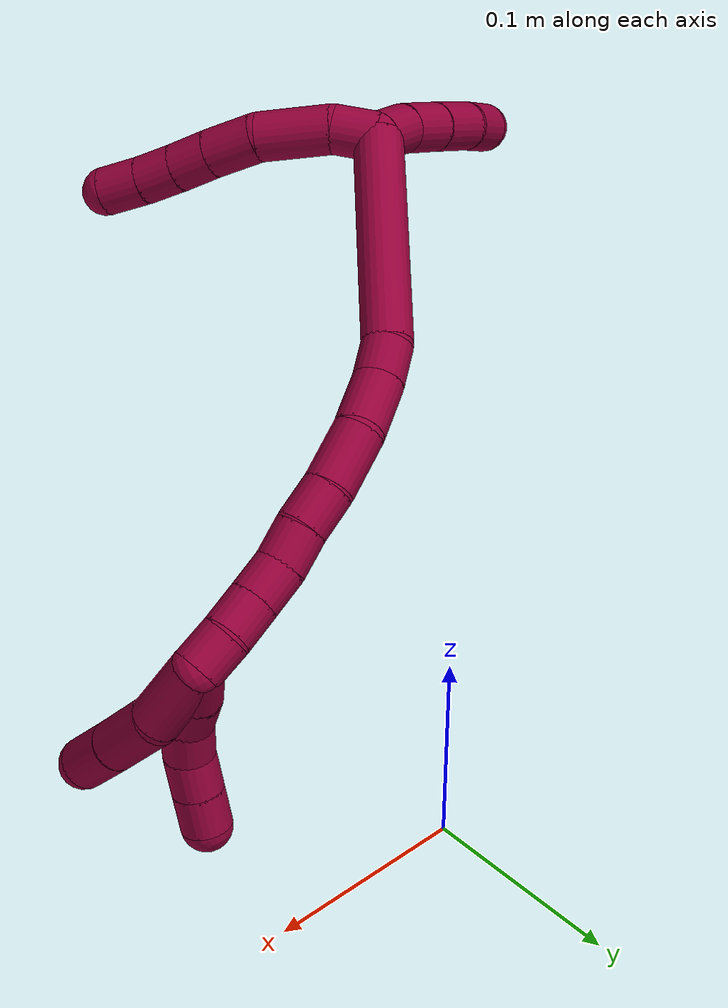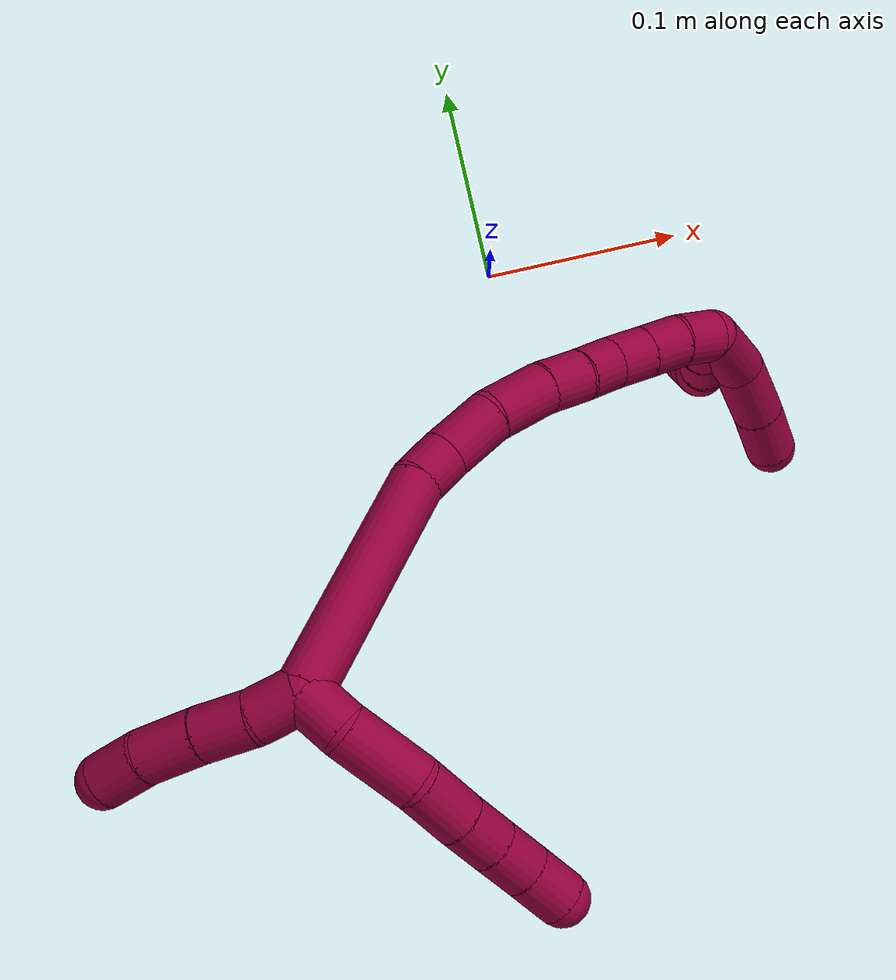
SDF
<sdf version="1.7">
 <world name="default">
  <model name="8">
   <static>0</static>
   <link name="8">
    <collision name="collision-cylinder-e_1_2_8">
     <pose>0.008519 0.000836 0.0074 -0.112443 0.852418 -0.051097</pose>
     <geometry><cylinder><radius>0.0125</radius><length>0.02263</length></cylinder></geometry>
     <surface>
      <friction><ode><mu>1.16</mu><mu2>1.16</mu2><slip1>0</slip1><slip2>0</slip2></ode></friction>
      <contact><ode><kp>1e+06</kp><kd>1</kd><max_vel>0</max_vel><min_depth>0.001</min_depth></ode></contact>
     </surface>
    </collision>
    <visual name="visual-cylinder-e_1_2_8">
     <pose>0.008519 0.000836 0.0074 -0.112443 0.852418 -0.051097</pose>
     <geometry><cylinder><radius>0.0125</radius><length>0.02263</length></cylinder></geometry>
     <material><ambient>0.584314 0 0.227451 1</ambient></material>
    </visual>
    <collision name="collision-cylinder-e_2_8_9">
     <pose>0.034049 0.001152 0.023183 0.061863 1.11221 0.038458</pose>
     <geometry><cylinder><radius>0.0125</radius><length>0.037943</length></cylinder></geometry>
     <surface>
      <friction><ode><mu>1.16</mu><mu2>1.16</mu2><slip1>0</slip1><slip2>0</slip2></ode></friction>
      <contact><ode><kp>1e+06</kp><kd>1</kd><max_vel>0</max_vel><min_depth>0.001</min_depth></ode></contact>
     </surface>
    </collision>
    <visual name="visual-cylinder-e_2_8_9">
     <pose>0.034049 0.001152 0.023183 0.061863 1.11221 0.038458</pose>
     <geometry><cylinder><radius>0.0125</radius><length>0.037943</length></cylinder></geometry>
     <material><ambient>0.584314 0 0.227451 1</ambient></material>
    </visual>
    <collision name="collision-cylinder-e_3_9_10">
     <pose>0.063424 -0.002751 0.035214 0.747637 1.18811 0.518003</pose>
     <geometry><cylinder><radius>0.0125</radius><length>0.026655</length></cylinder></geometry>
     <surface>
      <friction><ode><mu>1.16</mu><mu2>1.16</mu2><slip1>0</slip1><slip2>0</slip2></ode></friction>
      <contact><ode><kp>1e+06</kp><kd>1</kd><max_vel>0</max_vel><min_depth>0.001</min_depth></ode></contact>
     </surface>
    </collision>
    <visual name="visual-cylinder-e_3_9_10">
     <pose>0.063424 -0.002751 0.035214 0.747637 1.18811 0.518003</pose>
     <geometry><cylinder><radius>0.0125</radius><length>0.026655</length></cylinder></geometry>
     <material><ambient>0.584314 0 0.227451 1</ambient></material>
    </visual>
    <collision name="collision-cylinder-e_4_10_11">
     <pose>0.085426 -0.008714 0.041208 0.833196 1.22378 0.602152</pose>
     <geometry><cylinder><radius>0.0125</radius><length>0.020498</length></cylinder></geometry>
     <surface>
      <friction><ode><mu>1.16</mu><mu2>1.16</mu2><slip1>0</slip1><slip2>0</slip2></ode></friction>
      <contact><ode><kp>1e+06</kp><kd>1</kd><max_vel>0</max_vel><min_depth>0.001</min_depth></ode></contact>
     </surface>
    </collision>
    <visual name="visual-cylinder-e_4_10_11">
     <pose>0.085426 -0.008714 0.041208 0.833196 1.22378 0.602152</pose>
     <geometry><cylinder><radius>0.0125</radius><length>0.020498</length></cylinder></geometry>
     <material><ambient>0.584314 0 0.227451 1</ambient></material>
    </visual>
    <collision name="collision-cylinder-e_5_11_12">
     <pose>0.104603 -0.013545 0.046143 0.715418 1.2254 0.513892</pose>
     <geometry><cylinder><radius>0.0125</radius><length>0.020275</length></cylinder></geometry>
     <surface>
      <friction><ode><mu>1.16</mu><mu2>1.16</mu2><slip1>0</slip1><slip2>0</slip2></ode></friction>
      <contact><ode><kp>1e+06</kp><kd>1</kd><max_vel>0</max_vel><min_depth>0.001</min_depth></ode></contact>
     </surface>
    </collision>
    <visual name="visual-cylinder-e_5_11_12">
     <pose>0.104603 -0.013545 0.046143 0.715418 1.2254 0.513892</pose>
     <geometry><cylinder><radius>0.0125</radius><length>0.020275</length></cylinder></geometry>
     <material><ambient>0.584314 0 0.227451 1</ambient></material>
    </visual>
    <collision name="collision-cylinder-e_6_12_6">
     <pose>0.124383 -0.017894 0.052154 0.550184 1.19736 0.380442</pose>
     <geometry><cylinder><radius>0.0125</radius><length>0.021998</length></cylinder></geometry>
     <surface>
      <friction><ode><mu>1.16</mu><mu2>1.16</mu2><slip1>0</slip1><slip2>0</slip2></ode></friction>
      <contact><ode><kp>1e+06</kp><kd>1</kd><max_vel>0</max_vel><min_depth>0.001</min_depth></ode></contact>
     </surface>
    </collision>
    <visual name="visual-cylinder-e_6_12_6">
     <pose>0.124383 -0.017894 0.052154 0.550184 1.19736 0.380442</pose>
     <geometry><cylinder><radius>0.0125</radius><length>0.021998</length></cylinder></geometry>
     <material><ambient>0.584314 0 0.227451 1</ambient></material>
    </visual>
    <collision name="collision-cylinder-e_1_2_13">
     <pose>-0.005898 -0.009731 0.001197 1.44843 -0.541557 -0.481569</pose>
     <geometry><cylinder><radius>0.0125</radius><length>0.022883</length></cylinder></geometry>
     <surface>
      <friction><ode><mu>1.16</mu><mu2>1.16</mu2><slip1>0</slip1><slip2>0</slip2></ode></friction>
      <contact><ode><kp>1e+06</kp><kd>1</kd><max_vel>0</max_vel><min_depth>0.001</min_depth></ode></contact>
     </surface>
    </collision>
    <visual name="visual-cylinder-e_1_2_13">
     <pose>-0.005898 -0.009731 0.001197 1.44843 -0.541557 -0.481569</pose>
     <geometry><cylinder><radius>0.0125</radius><length>0.022883</length></cylinder></geometry>
     <material><ambient>0.584314 0 0.227451 1</ambient></material>
    </visual>
    <collision name="collision-cylinder-e_2_13_14">
     <pose>-0.018442 -0.03021 0.001355 1.66717 -0.551758 -0.604465</pose>
     <geometry><cylinder><radius>0.0125</radius><length>0.025359</length></cylinder></geometry>
     <surface>
      <friction><ode><mu>1.16</mu><mu2>1.16</mu2><slip1>0</slip1><slip2>0</slip2></ode></friction>
      <contact><ode><kp>1e+06</kp><kd>1</kd><max_vel>0</max_vel><min_depth>0.001</min_depth></ode></contact>
     </surface>
    </collision>
    <visual name="visual-cylinder-e_2_13_14">
     <pose>-0.018442 -0.03021 0.001355 1.66717 -0.551758 -0.604465</pose>
     <geometry><cylinder><radius>0.0125</radius><length>0.025359</length></cylinder></geometry>
     <material><ambient>0.584314 0 0.227451 1</ambient></material>
    </visual>
    <collision name="collision-cylinder-e_3_14_15">
     <pose>-0.031805 -0.053387 -0.000529 1.63865 -0.494467 -0.527668</pose>
     <geometry><cylinder><radius>0.0125</radius><length>0.028307</length></cylinder></geometry>
     <surface>
      <friction><ode><mu>1.16</mu><mu2>1.16</mu2><slip1>0</slip1><slip2>0</slip2></ode></friction>
      <contact><ode><kp>1e+06</kp><kd>1</kd><max_vel>0</max_vel><min_depth>0.001</min_depth></ode></contact>
     </surface>
    </collision>
    <visual name="visual-cylinder-e_3_14_15">
     <pose>-0.031805 -0.053387 -0.000529 1.63865 -0.494467 -0.527668</pose>
     <geometry><cylinder><radius>0.0125</radius><length>0.028307</length></cylinder></geometry>
     <material><ambient>0.584314 0 0.227451 1</ambient></material>
    </visual>
    <collision name="collision-cylinder-e_4_15_5">
     <pose>-0.042427 -0.07687 -0.001605 1.59173 -0.339587 -0.346628</pose>
     <geometry><cylinder><radius>0.0125</radius><length>0.023451</length></cylinder></geometry>
     <surface>
      <friction><ode><mu>1.16</mu><mu2>1.16</mu2><slip1>0</slip1><slip2>0</slip2></ode></friction>
      <contact><ode><kp>1e+06</kp><kd>1</kd><max_vel>0</max_vel><min_depth>0.001</min_depth></ode></contact>
     </surface>
    </collision>
    <visual name="visual-cylinder-e_4_15_5">
     <pose>-0.042427 -0.07687 -0.001605 1.59173 -0.339587 -0.346628</pose>
     <geometry><cylinder><radius>0.0125</radius><length>0.023451</length></cylinder></geometry>
     <material><ambient>0.584314 0 0.227451 1</ambient></material>
    </visual>
    <collision name="collision-cylinder-e_1_2_16">
     <pose>0.021519 0.021132 -0.049378 -2.73721 0.381067 -1.50991</pose>
     <geometry><cylinder><radius>0.0125</radius><length>0.115721</length></cylinder></geometry>
     <surface>
      <friction><ode><mu>1.16</mu><mu2>1.16</mu2><slip1>0</slip1><slip2>0</slip2></ode></friction>
      <contact><ode><kp>1e+06</kp><kd>1</kd><max_vel>0</max_vel><min_depth>0.001</min_depth></ode></contact>
     </surface>
    </collision>
    <visual name="visual-cylinder-e_1_2_16">
     <pose>0.021519 0.021132 -0.049378 -2.73721 0.381067 -1.50991</pose>
     <geometry><cylinder><radius>0.0125</radius><length>0.115721</length></cylinder></geometry>
     <material><ambient>0.584314 0 0.227451 1</ambient></material>
    </visual>
    <collision name="collision-cylinder-e_2_16_17">
     <pose>0.049052 0.046177 -0.106133 -2.65392 0.624205 -1.82789</pose>
     <geometry><cylinder><radius>0.0125</radius><length>0.02058</length></cylinder></geometry>
     <surface>
      <friction><ode><mu>1.16</mu><mu2>1.16</mu2><slip1>0</slip1><slip2>0</slip2></ode></friction>
      <contact><ode><kp>1e+06</kp><kd>1</kd><max_vel>0</max_vel><min_depth>0.001</min_depth></ode></contact>
     </surface>
    </collision>
    <visual name="visual-cylinder-e_2_16_17">
     <pose>0.049052 0.046177 -0.106133 -2.65392 0.624205 -1.82789</pose>
     <geometry><cylinder><radius>0.0125</radius><length>0.02058</length></cylinder></geometry>
     <material><ambient>0.584314 0 0.227451 1</ambient></material>
    </visual>
    <collision name="collision-cylinder-e_3_17_18">
     <pose>0.063748 0.057977 -0.122409 -2.41635 0.630619 -1.42027</pose>
     <geometry><cylinder><radius>0.0125</radius><length>0.029449</length></cylinder></geometry>
     <surface>
      <friction><ode><mu>1.16</mu><mu2>1.16</mu2><slip1>0</slip1><slip2>0</slip2></ode></friction>
      <contact><ode><kp>1e+06</kp><kd>1</kd><max_vel>0</max_vel><min_depth>0.001</min_depth></ode></contact>
     </surface>
    </collision>
    <visual name="visual-cylinder-e_3_17_18">
     <pose>0.063748 0.057977 -0.122409 -2.41635 0.630619 -1.42027</pose>
     <geometry><cylinder><radius>0.0125</radius><length>0.029449</length></cylinder></geometry>
     <material><ambient>0.584314 0 0.227451 1</ambient></material>
    </visual>
    <collision name="collision-cylinder-e_4_18_19">
     <pose>0.084254 0.071609 -0.139921 -2.55347 0.851654 -1.9642</pose>
     <geometry><cylinder><radius>0.0125</radius><length>0.03143</length></cylinder></geometry>
     <surface>
      <friction><ode><mu>1.16</mu><mu2>1.16</mu2><slip1>0</slip1><slip2>0</slip2></ode></friction>
      <contact><ode><kp>1e+06</kp><kd>1</kd><max_vel>0</max_vel><min_depth>0.001</min_depth></ode></contact>
     </surface>
    </collision>
    <visual name="visual-cylinder-e_4_18_19">
     <pose>0.084254 0.071609 -0.139921 -2.55347 0.851654 -1.9642</pose>
     <geometry><cylinder><radius>0.0125</radius><length>0.03143</length></cylinder></geometry>
     <material><ambient>0.584314 0 0.227451 1</ambient></material>
    </visual>
    <collision name="collision-cylinder-e_5_19_20">
     <pose>0.105412 0.080774 -0.153617 -2.54921 0.989944 -2.1125</pose>
     <geometry><cylinder><radius>0.0125</radius><length>0.022332</length></cylinder></geometry>
     <surface>
      <friction><ode><mu>1.16</mu><mu2>1.16</mu2><slip1>0</slip1><slip2>0</slip2></ode></friction>
      <contact><ode><kp>1e+06</kp><kd>1</kd><max_vel>0</max_vel><min_depth>0.001</min_depth></ode></contact>
     </surface>
    </collision>
    <visual name="visual-cylinder-e_5_19_20">
     <pose>0.105412 0.080774 -0.153617 -2.54921 0.989944 -2.1125</pose>
     <geometry><cylinder><radius>0.0125</radius><length>0.022332</length></cylinder></geometry>
     <material><ambient>0.584314 0 0.227451 1</ambient></material>
    </visual>
    <collision name="collision-cylinder-e_6_20_21">
     <pose>0.122921 0.08648 -0.16413 -2.74322 0.946354 -2.39045</pose>
     <geometry><cylinder><radius>0.0125</radius><length>0.02015</length></cylinder></geometry>
     <surface>
      <friction><ode><mu>1.16</mu><mu2>1.16</mu2><slip1>0</slip1><slip2>0</slip2></ode></friction>
      <contact><ode><kp>1e+06</kp><kd>1</kd><max_vel>0</max_vel><min_depth>0.001</min_depth></ode></contact>
     </surface>
    </collision>
    <visual name="visual-cylinder-e_6_20_21">
     <pose>0.122921 0.08648 -0.16413 -2.74322 0.946354 -2.39045</pose>
     <geometry><cylinder><radius>0.0125</radius><length>0.02015</length></cylinder></geometry>
     <material><ambient>0.584314 0 0.227451 1</ambient></material>
    </visual>
    <collision name="collision-cylinder-e_7_21_22">
     <pose>0.139449 0.09248 -0.173646 -2.4039 0.986596 -1.89492</pose>
     <geometry><cylinder><radius>0.0125</radius><length>0.020031</length></cylinder></geometry>
     <surface>
      <friction><ode><mu>1.16</mu><mu2>1.16</mu2><slip1>0</slip1><slip2>0</slip2></ode></friction>
      <contact><ode><kp>1e+06</kp><kd>1</kd><max_vel>0</max_vel><min_depth>0.001</min_depth></ode></contact>
     </surface>
    </collision>
    <visual name="visual-cylinder-e_7_21_22">
     <pose>0.139449 0.09248 -0.173646 -2.4039 0.986596 -1.89492</pose>
     <geometry><cylinder><radius>0.0125</radius><length>0.020031</length></cylinder></geometry>
     <material><ambient>0.584314 0 0.227451 1</ambient></material>
    </visual>
    <collision name="collision-cylinder-e_8_22_23">
     <pose>0.156135 0.100087 -0.181789 -2.37665 0.977293 -1.84608</pose>
     <geometry><cylinder><radius>0.0125</radius><length>0.0201</length></cylinder></geometry>
     <surface>
      <friction><ode><mu>1.16</mu><mu2>1.16</mu2><slip1>0</slip1><slip2>0</slip2></ode></friction>
      <contact><ode><kp>1e+06</kp><kd>1</kd><max_vel>0</max_vel><min_depth>0.001</min_depth></ode></contact>
     </surface>
    </collision>
    <visual name="visual-cylinder-e_8_22_23">
     <pose>0.156135 0.100087 -0.181789 -2.37665 0.977293 -1.84608</pose>
     <geometry><cylinder><radius>0.0125</radius><length>0.0201</length></cylinder></geometry>
     <material><ambient>0.584314 0 0.227451 1</ambient></material>
    </visual>
    <collision name="collision-cylinder-e_9_23_1">
     <pose>0.173612 0.106442 -0.189362 -2.53087 1.13182 -2.22033</pose>
     <geometry><cylinder><radius>0.0125</radius><length>0.020206</length></cylinder></geometry>
     <surface>
      <friction><ode><mu>1.16</mu><mu2>1.16</mu2><slip1>0</slip1><slip2>0</slip2></ode></friction>
      <contact><ode><kp>1e+06</kp><kd>1</kd><max_vel>0</max_vel><min_depth>0.001</min_depth></ode></contact>
     </surface>
    </collision>
    <visual name="visual-cylinder-e_9_23_1">
     <pose>0.173612 0.106442 -0.189362 -2.53087 1.13182 -2.22033</pose>
     <geometry><cylinder><radius>0.0125</radius><length>0.020206</length></cylinder></geometry>
     <material><ambient>0.584314 0 0.227451 1</ambient></material>
    </visual>
    <collision name="collision-cylinder-e_1_1_24">
     <pose>0.198491 0.100547 -0.197107 2.03913 1.03388 1.4926</pose>
     <geometry><cylinder><radius>0.0125</radius><length>0.036621</length></cylinder></geometry>
     <surface>
      <friction><ode><mu>1.16</mu><mu2>1.16</mu2><slip1>0</slip1><slip2>0</slip2></ode></friction>
      <contact><ode><kp>1e+06</kp><kd>1</kd><max_vel>0</max_vel><min_depth>0.001</min_depth></ode></contact>
     </surface>
    </collision>
    <visual name="visual-cylinder-e_1_1_24">
     <pose>0.198491 0.100547 -0.197107 2.03913 1.03388 1.4926</pose>
     <geometry><cylinder><radius>0.0125</radius><length>0.036621</length></cylinder></geometry>
     <material><ambient>0.584314 0 0.227451 1</ambient></material>
    </visual>
    <collision name="collision-cylinder-e_2_24_25">
     <pose>0.228332 0.081979 -0.200918 1.52998 0.943834 0.911172</pose>
     <geometry><cylinder><radius>0.0125</radius><length>0.03484</length></cylinder></geometry>
     <surface>
      <friction><ode><mu>1.16</mu><mu2>1.16</mu2><slip1>0</slip1><slip2>0</slip2></ode></friction>
      <contact><ode><kp>1e+06</kp><kd>1</kd><max_vel>0</max_vel><min_depth>0.001</min_depth></ode></contact>
     </surface>
    </collision>
    <visual name="visual-cylinder-e_2_24_25">
     <pose>0.228332 0.081979 -0.200918 1.52998 0.943834 0.911172</pose>
     <geometry><cylinder><radius>0.0125</radius><length>0.03484</length></cylinder></geometry>
     <material><ambient>0.584314 0 0.227451 1</ambient></material>
    </visual>
    <collision name="collision-cylinder-e_3_25_4">
     <pose>0.253613 0.062916 -0.199851 1.49756 0.899574 0.843491</pose>
     <geometry><cylinder><radius>0.0125</radius><length>0.028539</length></cylinder></geometry>
     <surface>
      <friction><ode><mu>1.16</mu><mu2>1.16</mu2><slip1>0</slip1><slip2>0</slip2></ode></friction>
      <contact><ode><kp>1e+06</kp><kd>1</kd><max_vel>0</max_vel><min_depth>0.001</min_depth></ode></contact>
     </surface>
    </collision>
    <visual name="visual-cylinder-e_3_25_4">
     <pose>0.253613 0.062916 -0.199851 1.49756 0.899574 0.843491</pose>
     <geometry><cylinder><radius>0.0125</radius><length>0.028539</length></cylinder></geometry>
     <material><ambient>0.584314 0 0.227451 1</ambient></material>
    </visual>
    <collision name="collision-cylinder-e_1_1_26">
     <pose>0.187417 0.101105 -0.197057 2.06251 0.484781 0.783167</pose>
     <geometry><cylinder><radius>0.0125</radius><length>0.02</length></cylinder></geometry>
     <surface>
      <friction><ode><mu>1.16</mu><mu2>1.16</mu2><slip1>0</slip1><slip2>0</slip2></ode></friction>
      <contact><ode><kp>1e+06</kp><kd>1</kd><max_vel>0</max_vel><min_depth>0.001</min_depth></ode></contact>
     </surface>
    </collision>
    <visual name="visual-cylinder-e_1_1_26">
     <pose>0.187417 0.101105 -0.197057 2.06251 0.484781 0.783167</pose>
     <geometry><cylinder><radius>0.0125</radius><length>0.02</length></cylinder></geometry>
     <material><ambient>0.584314 0 0.227451 1</ambient></material>
    </visual>
    <collision name="collision-cylinder-e_2_26_27">
     <pose>0.198448 0.086469 -0.204794 2.05086 0.690742 1.07049</pose>
     <geometry><cylinder><radius>0.0125</radius><length>0.02</length></cylinder></geometry>
     <surface>
      <friction><ode><mu>1.16</mu><mu2>1.16</mu2><slip1>0</slip1><slip2>0</slip2></ode></friction>
      <contact><ode><kp>1e+06</kp><kd>1</kd><max_vel>0</max_vel><min_depth>0.001</min_depth></ode></contact>
     </surface>
    </collision>
    <visual name="visual-cylinder-e_2_26_27">
     <pose>0.198448 0.086469 -0.204794 2.05086 0.690742 1.07049</pose>
     <geometry><cylinder><radius>0.0125</radius><length>0.02</length></cylinder></geometry>
     <material><ambient>0.584314 0 0.227451 1</ambient></material>
    </visual>
    <collision name="collision-cylinder-e_3_27_28">
     <pose>0.209718 0.07334 -0.214388 2.33525 0.511919 1.10064</pose>
     <geometry><cylinder><radius>0.0125</radius><length>0.02</length></cylinder></geometry>
     <surface>
      <friction><ode><mu>1.16</mu><mu2>1.16</mu2><slip1>0</slip1><slip2>0</slip2></ode></friction>
      <contact><ode><kp>1e+06</kp><kd>1</kd><max_vel>0</max_vel><min_depth>0.001</min_depth></ode></contact>
     </surface>
    </collision>
    <visual name="visual-cylinder-e_3_27_28">
     <pose>0.209718 0.07334 -0.214388 2.33525 0.511919 1.10064</pose>
     <geometry><cylinder><radius>0.0125</radius><length>0.02</length></cylinder></geometry>
     <material><ambient>0.584314 0 0.227451 1</ambient></material>
    </visual>
    <collision name="collision-cylinder-e_4_28_29">
     <pose>0.218132 0.062315 -0.228499 2.61161 0.359264 1.17943</pose>
     <geometry><cylinder><radius>0.0125</radius><length>0.02</length></cylinder></geometry>
     <surface>
      <friction><ode><mu>1.16</mu><mu2>1.16</mu2><slip1>0</slip1><slip2>0</slip2></ode></friction>
      <contact><ode><kp>1e+06</kp><kd>1</kd><max_vel>0</max_vel><min_depth>0.001</min_depth></ode></contact>
     </surface>
    </collision>
    <visual name="visual-cylinder-e_4_28_29">
     <pose>0.218132 0.062315 -0.228499 2.61161 0.359264 1.17943</pose>
     <geometry><cylinder><radius>0.0125</radius><length>0.02</length></cylinder></geometry>
     <material><ambient>0.584314 0 0.227451 1</ambient></material>
    </visual>
    <collision name="collision-cylinder-e_5_29_3">
     <pose>0.225163 0.052846 -0.244652 2.61117 0.35918 1.1784</pose>
     <geometry><cylinder><radius>0.0125</radius><length>0.02</length></cylinder></geometry>
     <surface>
      <friction><ode><mu>1.16</mu><mu2>1.16</mu2><slip1>0</slip1><slip2>0</slip2></ode></friction>
      <contact><ode><kp>1e+06</kp><kd>1</kd><max_vel>0</max_vel><min_depth>0.001</min_depth></ode></contact>
     </surface>
    </collision>
    <visual name="visual-cylinder-e_5_29_3">
     <pose>0.225163 0.052846 -0.244652 2.61117 0.35918 1.1784</pose>
     <geometry><cylinder><radius>0.0125</radius><length>0.02</length></cylinder></geometry>
     <material><ambient>0.584314 0 0.227451 1</ambient></material>
    </visual>
    <collision name="collision-sphere-3">
     <pose>0.228678 0.04811 -0.252727 0 -0 0</pose>
     <geometry><sphere><radius>0.0125</radius></sphere></geometry>
     <surface>
      <friction><ode><mu>1.16</mu><mu2>1.16</mu2><slip1>0</slip1><slip2>0</slip2></ode></friction>
      <contact><ode><kp>1e+06</kp><kd>1</kd><max_vel>0</max_vel><min_depth>0.001</min_depth></ode></contact>
     </surface>
    </collision>
    <visual name="visual-sphere-3">
     <pose>0.228678 0.04811 -0.252727 0 -0 0</pose>
     <geometry><sphere><radius>0.0125</radius></sphere></geometry>
     <material><ambient>0.584314 0 0.227451 1</ambient></material>
    </visual>
    <collision name="collision-sphere-29">
     <pose>0.221648 0.057583 -0.236576 0 -0 0</pose>
     <geometry><sphere><radius>0.0125</radius></sphere></geometry>
     <surface>
      <friction><ode><mu>1.16</mu><mu2>1.16</mu2><slip1>0</slip1><slip2>0</slip2></ode></friction>
      <contact><ode><kp>1e+06</kp><kd>1</kd><max_vel>0</max_vel><min_depth>0.001</min_depth></ode></contact>
     </surface>
    </collision>
    <visual name="visual-sphere-29">
     <pose>0.221648 0.057583 -0.236576 0 -0 0</pose>
     <geometry><sphere><radius>0.0125</radius></sphere></geometry>
     <material><ambient>0.584314 0 0.227451 1</ambient></material>
    </visual>
    <collision name="collision-sphere-28">
     <pose>0.214616 0.067048 -0.220422 0 -0 0</pose>
     <geometry><sphere><radius>0.0125</radius></sphere></geometry>
     <surface>
      <friction><ode><mu>1.16</mu><mu2>1.16</mu2><slip1>0</slip1><slip2>0</slip2></ode></friction>
      <contact><ode><kp>1e+06</kp><kd>1</kd><max_vel>0</max_vel><min_depth>0.001</min_depth></ode></contact>
     </surface>
    </collision>
    <visual name="visual-sphere-28">
     <pose>0.214616 0.067048 -0.220422 0 -0 0</pose>
     <geometry><sphere><radius>0.0125</radius></sphere></geometry>
     <material><ambient>0.584314 0 0.227451 1</ambient></material>
    </visual>
    <collision name="collision-sphere-27">
     <pose>0.204819 0.079632 -0.208354 0 -0 0</pose>
     <geometry><sphere><radius>0.0125</radius></sphere></geometry>
     <surface>
      <friction><ode><mu>1.16</mu><mu2>1.16</mu2><slip1>0</slip1><slip2>0</slip2></ode></friction>
      <contact><ode><kp>1e+06</kp><kd>1</kd><max_vel>0</max_vel><min_depth>0.001</min_depth></ode></contact>
     </surface>
    </collision>
    <visual name="visual-sphere-27">
     <pose>0.204819 0.079632 -0.208354 0 -0 0</pose>
     <geometry><sphere><radius>0.0125</radius></sphere></geometry>
     <material><ambient>0.584314 0 0.227451 1</ambient></material>
    </visual>
    <collision name="collision-sphere-26">
     <pose>0.192077 0.093305 -0.201234 0 -0 0</pose>
     <geometry><sphere><radius>0.0125</radius></sphere></geometry>
     <surface>
      <friction><ode><mu>1.16</mu><mu2>1.16</mu2><slip1>0</slip1><slip2>0</slip2></ode></friction>
      <contact><ode><kp>1e+06</kp><kd>1</kd><max_vel>0</max_vel><min_depth>0.001</min_depth></ode></contact>
     </surface>
    </collision>
    <visual name="visual-sphere-26">
     <pose>0.192077 0.093305 -0.201234 0 -0 0</pose>
     <geometry><sphere><radius>0.0125</radius></sphere></geometry>
     <material><ambient>0.584314 0 0.227451 1</ambient></material>
    </visual>
    <collision name="collision-sphere-4">
     <pose>0.264787 0.054065 -0.199202 0 -0 0</pose>
     <geometry><sphere><radius>0.0125</radius></sphere></geometry>
     <surface>
      <friction><ode><mu>1.16</mu><mu2>1.16</mu2><slip1>0</slip1><slip2>0</slip2></ode></friction>
      <contact><ode><kp>1e+06</kp><kd>1</kd><max_vel>0</max_vel><min_depth>0.001</min_depth></ode></contact>
     </surface>
    </collision>
    <visual name="visual-sphere-4">
     <pose>0.264787 0.054065 -0.199202 0 -0 0</pose>
     <geometry><sphere><radius>0.0125</radius></sphere></geometry>
     <material><ambient>0.584314 0 0.227451 1</ambient></material>
    </visual>
    <collision name="collision-sphere-25">
     <pose>0.242439 0.071767 -0.200501 0 -0 0</pose>
     <geometry><sphere><radius>0.0125</radius></sphere></geometry>
     <surface>
      <friction><ode><mu>1.16</mu><mu2>1.16</mu2><slip1>0</slip1><slip2>0</slip2></ode></friction>
      <contact><ode><kp>1e+06</kp><kd>1</kd><max_vel>0</max_vel><min_depth>0.001</min_depth></ode></contact>
     </surface>
    </collision>
    <visual name="visual-sphere-25">
     <pose>0.242439 0.071767 -0.200501 0 -0 0</pose>
     <geometry><sphere><radius>0.0125</radius></sphere></geometry>
     <material><ambient>0.584314 0 0.227451 1</ambient></material>
    </visual>
    <collision name="collision-sphere-24">
     <pose>0.214225 0.09219 -0.201335 0 -0 0</pose>
     <geometry><sphere><radius>0.0125</radius></sphere></geometry>
     <surface>
      <friction><ode><mu>1.16</mu><mu2>1.16</mu2><slip1>0</slip1><slip2>0</slip2></ode></friction>
      <contact><ode><kp>1e+06</kp><kd>1</kd><max_vel>0</max_vel><min_depth>0.001</min_depth></ode></contact>
     </surface>
    </collision>
    <visual name="visual-sphere-24">
     <pose>0.214225 0.09219 -0.201335 0 -0 0</pose>
     <geometry><sphere><radius>0.0125</radius></sphere></geometry>
     <material><ambient>0.584314 0 0.227451 1</ambient></material>
    </visual>
    <collision name="collision-sphere-1">
     <pose>0.182757 0.108904 -0.192879 0 -0 0</pose>
     <geometry><sphere><radius>0.0125</radius></sphere></geometry>
     <surface>
      <friction><ode><mu>1.16</mu><mu2>1.16</mu2><slip1>0</slip1><slip2>0</slip2></ode></friction>
      <contact><ode><kp>1e+06</kp><kd>1</kd><max_vel>0</max_vel><min_depth>0.001</min_depth></ode></contact>
     </surface>
    </collision>
    <visual name="visual-sphere-1">
     <pose>0.182757 0.108904 -0.192879 0 -0 0</pose>
     <geometry><sphere><radius>0.0125</radius></sphere></geometry>
     <material><ambient>0.584314 0 0.227451 1</ambient></material>
    </visual>
    <collision name="collision-sphere-23">
     <pose>0.164466 0.10398 -0.185844 0 -0 0</pose>
     <geometry><sphere><radius>0.0125</radius></sphere></geometry>
     <surface>
      <friction><ode><mu>1.16</mu><mu2>1.16</mu2><slip1>0</slip1><slip2>0</slip2></ode></friction>
      <contact><ode><kp>1e+06</kp><kd>1</kd><max_vel>0</max_vel><min_depth>0.001</min_depth></ode></contact>
     </surface>
    </collision>
    <visual name="visual-sphere-23">
     <pose>0.164466 0.10398 -0.185844 0 -0 0</pose>
     <geometry><sphere><radius>0.0125</radius></sphere></geometry>
     <material><ambient>0.584314 0 0.227451 1</ambient></material>
    </visual>
    <collision name="collision-sphere-22">
     <pose>0.147804 0.096195 -0.177734 0 -0 0</pose>
     <geometry><sphere><radius>0.0125</radius></sphere></geometry>
     <surface>
      <friction><ode><mu>1.16</mu><mu2>1.16</mu2><slip1>0</slip1><slip2>0</slip2></ode></friction>
      <contact><ode><kp>1e+06</kp><kd>1</kd><max_vel>0</max_vel><min_depth>0.001</min_depth></ode></contact>
     </surface>
    </collision>
    <visual name="visual-sphere-22">
     <pose>0.147804 0.096195 -0.177734 0 -0 0</pose>
     <geometry><sphere><radius>0.0125</radius></sphere></geometry>
     <material><ambient>0.584314 0 0.227451 1</ambient></material>
    </visual>
    <collision name="collision-sphere-21">
     <pose>0.131095 0.088765 -0.169559 0 -0 0</pose>
     <geometry><sphere><radius>0.0125</radius></sphere></geometry>
     <surface>
      <friction><ode><mu>1.16</mu><mu2>1.16</mu2><slip1>0</slip1><slip2>0</slip2></ode></friction>
      <contact><ode><kp>1e+06</kp><kd>1</kd><max_vel>0</max_vel><min_depth>0.001</min_depth></ode></contact>
     </surface>
    </collision>
    <visual name="visual-sphere-21">
     <pose>0.131095 0.088765 -0.169559 0 -0 0</pose>
     <geometry><sphere><radius>0.0125</radius></sphere></geometry>
     <material><ambient>0.584314 0 0.227451 1</ambient></material>
    </visual>
    <collision name="collision-sphere-12">
     <pose>0.114141 -0.015796 0.048733 0 -0 0</pose>
     <geometry><sphere><radius>0.0125</radius></sphere></geometry>
     <surface>
      <friction><ode><mu>1.16</mu><mu2>1.16</mu2><slip1>0</slip1><slip2>0</slip2></ode></friction>
      <contact><ode><kp>1e+06</kp><kd>1</kd><max_vel>0</max_vel><min_depth>0.001</min_depth></ode></contact>
     </surface>
    </collision>
    <visual name="visual-sphere-12">
     <pose>0.114141 -0.015796 0.048733 0 -0 0</pose>
     <geometry><sphere><radius>0.0125</radius></sphere></geometry>
     <material><ambient>0.584314 0 0.227451 1</ambient></material>
    </visual>
    <collision name="collision-sphere-11">
     <pose>0.095064 -0.011294 0.043552 0 -0 0</pose>
     <geometry><sphere><radius>0.0125</radius></sphere></geometry>
     <surface>
      <friction><ode><mu>1.16</mu><mu2>1.16</mu2><slip1>0</slip1><slip2>0</slip2></ode></friction>
      <contact><ode><kp>1e+06</kp><kd>1</kd><max_vel>0</max_vel><min_depth>0.001</min_depth></ode></contact>
     </surface>
    </collision>
    <visual name="visual-sphere-11">
     <pose>0.095064 -0.011294 0.043552 0 -0 0</pose>
     <geometry><sphere><radius>0.0125</radius></sphere></geometry>
     <material><ambient>0.584314 0 0.227451 1</ambient></material>
    </visual>
    <collision name="collision-sphere-10">
     <pose>0.075788 -0.006134 0.038864 0 -0 0</pose>
     <geometry><sphere><radius>0.0125</radius></sphere></geometry>
     <surface>
      <friction><ode><mu>1.16</mu><mu2>1.16</mu2><slip1>0</slip1><slip2>0</slip2></ode></friction>
      <contact><ode><kp>1e+06</kp><kd>1</kd><max_vel>0</max_vel><min_depth>0.001</min_depth></ode></contact>
     </surface>
    </collision>
    <visual name="visual-sphere-10">
     <pose>0.075788 -0.006134 0.038864 0 -0 0</pose>
     <geometry><sphere><radius>0.0125</radius></sphere></geometry>
     <material><ambient>0.584314 0 0.227451 1</ambient></material>
    </visual>
    <collision name="collision-sphere-9">
     <pose>0.051061 0.000633 0.031565 0 -0 0</pose>
     <geometry><sphere><radius>0.0125</radius></sphere></geometry>
     <surface>
      <friction><ode><mu>1.16</mu><mu2>1.16</mu2><slip1>0</slip1><slip2>0</slip2></ode></friction>
      <contact><ode><kp>1e+06</kp><kd>1</kd><max_vel>0</max_vel><min_depth>0.001</min_depth></ode></contact>
     </surface>
    </collision>
    <visual name="visual-sphere-9">
     <pose>0.051061 0.000633 0.031565 0 -0 0</pose>
     <geometry><sphere><radius>0.0125</radius></sphere></geometry>
     <material><ambient>0.584314 0 0.227451 1</ambient></material>
    </visual>
    <collision name="collision-sphere-2">
     <geometry><sphere><radius>0.0125</radius></sphere></geometry>
     <surface>
      <friction><ode><mu>1.16</mu><mu2>1.16</mu2><slip1>0</slip1><slip2>0</slip2></ode></friction>
      <contact><ode><kp>1e+06</kp><kd>1</kd><max_vel>0</max_vel><min_depth>0.001</min_depth></ode></contact>
     </surface>
    </collision>
    <visual name="visual-sphere-2">
     <geometry><sphere><radius>0.0125</radius></sphere></geometry>
     <material><ambient>0.584314 0 0.227451 1</ambient></material>
    </visual>
    <collision name="collision-sphere-19">
     <pose>0.096078 0.077352 -0.148534 0 -0 0</pose>
     <geometry><sphere><radius>0.0125</radius></sphere></geometry>
     <surface>
      <friction><ode><mu>1.16</mu><mu2>1.16</mu2><slip1>0</slip1><slip2>0</slip2></ode></friction>
      <contact><ode><kp>1e+06</kp><kd>1</kd><max_vel>0</max_vel><min_depth>0.001</min_depth></ode></contact>
     </surface>
    </collision>
    <visual name="visual-sphere-19">
     <pose>0.096078 0.077352 -0.148534 0 -0 0</pose>
     <geometry><sphere><radius>0.0125</radius></sphere></geometry>
     <material><ambient>0.584314 0 0.227451 1</ambient></material>
    </visual>
    <collision name="collision-sphere-8">
     <pose>0.017038 0.001671 0.014801 0 -0 0</pose>
     <geometry><sphere><radius>0.0125</radius></sphere></geometry>
     <surface>
      <friction><ode><mu>1.16</mu><mu2>1.16</mu2><slip1>0</slip1><slip2>0</slip2></ode></friction>
      <contact><ode><kp>1e+06</kp><kd>1</kd><max_vel>0</max_vel><min_depth>0.001</min_depth></ode></contact>
     </surface>
    </collision>
    <visual name="visual-sphere-8">
     <pose>0.017038 0.001671 0.014801 0 -0 0</pose>
     <geometry><sphere><radius>0.0125</radius></sphere></geometry>
     <material><ambient>0.584314 0 0.227451 1</ambient></material>
    </visual>
    <collision name="collision-sphere-6">
     <pose>0.134624 -0.019992 0.055575 0 -0 0</pose>
     <geometry><sphere><radius>0.0125</radius></sphere></geometry>
     <surface>
      <friction><ode><mu>1.16</mu><mu2>1.16</mu2><slip1>0</slip1><slip2>0</slip2></ode></friction>
      <contact><ode><kp>1e+06</kp><kd>1</kd><max_vel>0</max_vel><min_depth>0.001</min_depth></ode></contact>
     </surface>
    </collision>
    <visual name="visual-sphere-6">
     <pose>0.134624 -0.019992 0.055575 0 -0 0</pose>
     <geometry><sphere><radius>0.0125</radius></sphere></geometry>
     <material><ambient>0.584314 0 0.227451 1</ambient></material>
    </visual>
    <collision name="collision-sphere-13">
     <pose>-0.011796 -0.019462 0.002393 0 -0 0</pose>
     <geometry><sphere><radius>0.0125</radius></sphere></geometry>
     <surface>
      <friction><ode><mu>1.16</mu><mu2>1.16</mu2><slip1>0</slip1><slip2>0</slip2></ode></friction>
      <contact><ode><kp>1e+06</kp><kd>1</kd><max_vel>0</max_vel><min_depth>0.001</min_depth></ode></contact>
     </surface>
    </collision>
    <visual name="visual-sphere-13">
     <pose>-0.011796 -0.019462 0.002393 0 -0 0</pose>
     <geometry><sphere><radius>0.0125</radius></sphere></geometry>
     <material><ambient>0.584314 0 0.227451 1</ambient></material>
    </visual>
    <collision name="collision-sphere-14">
     <pose>-0.025088 -0.040957 0.000316 0 -0 0</pose>
     <geometry><sphere><radius>0.0125</radius></sphere></geometry>
     <surface>
      <friction><ode><mu>1.16</mu><mu2>1.16</mu2><slip1>0</slip1><slip2>0</slip2></ode></friction>
      <contact><ode><kp>1e+06</kp><kd>1</kd><max_vel>0</max_vel><min_depth>0.001</min_depth></ode></contact>
     </surface>
    </collision>
    <visual name="visual-sphere-14">
     <pose>-0.025088 -0.040957 0.000316 0 -0 0</pose>
     <geometry><sphere><radius>0.0125</radius></sphere></geometry>
     <material><ambient>0.584314 0 0.227451 1</ambient></material>
    </visual>
    <collision name="collision-sphere-15">
     <pose>-0.038522 -0.065817 -0.001374 0 -0 0</pose>
     <geometry><sphere><radius>0.0125</radius></sphere></geometry>
     <surface>
      <friction><ode><mu>1.16</mu><mu2>1.16</mu2><slip1>0</slip1><slip2>0</slip2></ode></friction>
      <contact><ode><kp>1e+06</kp><kd>1</kd><max_vel>0</max_vel><min_depth>0.001</min_depth></ode></contact>
     </surface>
    </collision>
    <visual name="visual-sphere-15">
     <pose>-0.038522 -0.065817 -0.001374 0 -0 0</pose>
     <geometry><sphere><radius>0.0125</radius></sphere></geometry>
     <material><ambient>0.584314 0 0.227451 1</ambient></material>
    </visual>
    <collision name="collision-sphere-5">
     <pose>-0.046333 -0.087924 -0.001837 0 -0 0</pose>
     <geometry><sphere><radius>0.0125</radius></sphere></geometry>
     <surface>
      <friction><ode><mu>1.16</mu><mu2>1.16</mu2><slip1>0</slip1><slip2>0</slip2></ode></friction>
      <contact><ode><kp>1e+06</kp><kd>1</kd><max_vel>0</max_vel><min_depth>0.001</min_depth></ode></contact>
     </surface>
    </collision>
    <visual name="visual-sphere-5">
     <pose>-0.046333 -0.087924 -0.001837 0 -0 0</pose>
     <geometry><sphere><radius>0.0125</radius></sphere></geometry>
     <material><ambient>0.584314 0 0.227451 1</ambient></material>
    </visual>
    <collision name="collision-sphere-16">
     <pose>0.043038 0.042264 -0.098757 0 -0 0</pose>
     <geometry><sphere><radius>0.0125</radius></sphere></geometry>
     <surface>
      <friction><ode><mu>1.16</mu><mu2>1.16</mu2><slip1>0</slip1><slip2>0</slip2></ode></friction>
      <contact><ode><kp>1e+06</kp><kd>1</kd><max_vel>0</max_vel><min_depth>0.001</min_depth></ode></contact>
     </surface>
    </collision>
    <visual name="visual-sphere-16">
     <pose>0.043038 0.042264 -0.098757 0 -0 0</pose>
     <geometry><sphere><radius>0.0125</radius></sphere></geometry>
     <material><ambient>0.584314 0 0.227451 1</ambient></material>
    </visual>
    <collision name="collision-sphere-17">
     <pose>0.055066 0.050089 -0.113509 0 -0 0</pose>
     <geometry><sphere><radius>0.0125</radius></sphere></geometry>
     <surface>
      <friction><ode><mu>1.16</mu><mu2>1.16</mu2><slip1>0</slip1><slip2>0</slip2></ode></friction>
      <contact><ode><kp>1e+06</kp><kd>1</kd><max_vel>0</max_vel><min_depth>0.001</min_depth></ode></contact>
     </surface>
    </collision>
    <visual name="visual-sphere-17">
     <pose>0.055066 0.050089 -0.113509 0 -0 0</pose>
     <geometry><sphere><radius>0.0125</radius></sphere></geometry>
     <material><ambient>0.584314 0 0.227451 1</ambient></material>
    </visual>
    <collision name="collision-sphere-18">
     <pose>0.072431 0.065866 -0.131309 0 -0 0</pose>
     <geometry><sphere><radius>0.0125</radius></sphere></geometry>
     <surface>
      <friction><ode><mu>1.16</mu><mu2>1.16</mu2><slip1>0</slip1><slip2>0</slip2></ode></friction>
      <contact><ode><kp>1e+06</kp><kd>1</kd><max_vel>0</max_vel><min_depth>0.001</min_depth></ode></contact>
     </surface>
    </collision>
    <visual name="visual-sphere-18">
     <pose>0.072431 0.065866 -0.131309 0 -0 0</pose>
     <geometry><sphere><radius>0.0125</radius></sphere></geometry>
     <material><ambient>0.584314 0 0.227451 1</ambient></material>
    </visual>
    <collision name="collision-sphere-20">
     <pose>0.114747 0.084195 -0.158701 0 -0 0</pose>
     <geometry><sphere><radius>0.0125</radius></sphere></geometry>
     <surface>
      <friction><ode><mu>1.16</mu><mu2>1.16</mu2><slip1>0</slip1><slip2>0</slip2></ode></friction>
      <contact><ode><kp>1e+06</kp><kd>1</kd><max_vel>0</max_vel><min_depth>0.001</min_depth></ode></contact>
     </surface>
    </collision>
    <visual name="visual-sphere-20">
     <pose>0.114747 0.084195 -0.158701 0 -0 0</pose>
     <geometry><sphere><radius>0.0125</radius></sphere></geometry>
     <material><ambient>0.584314 0 0.227451 1</ambient></material>
    </visual>
    <inertial>
     <pose>0.097094 0.036814 -0.093846 0 -0 0</pose>
     <mass>0.75</mass>
     <inertia>
      <ixx>-6.9e-05</ixx>
      <ixy>0</ixy>
      <ixz>0</ixz>
      <iyy>-8.4e-05</iyy>
      <iyz>0</iyz>
      <izz>-0.000135</izz>
     </inertia>
    </inertial>
   </link>
   <pose>-0.123025 -0.183824 0.255615 0.759652 0.514734 -0.52896</pose>
  </model>
 </world>
</sdf>
